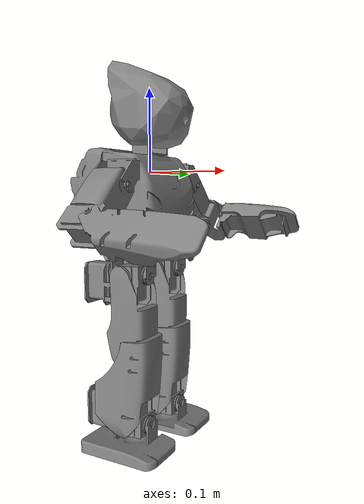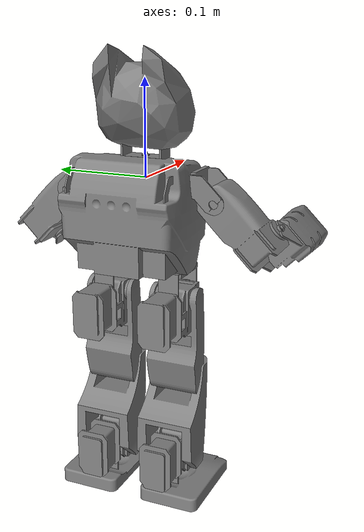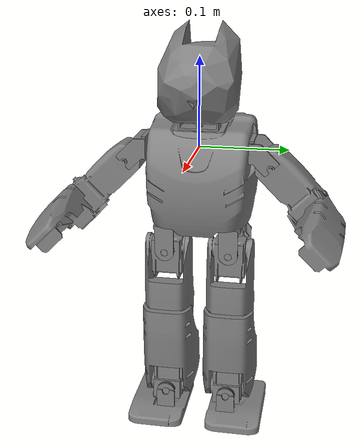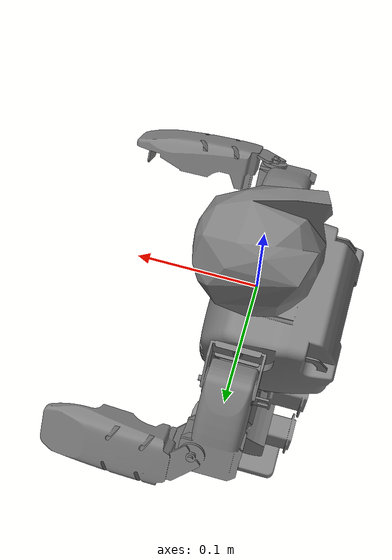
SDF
<?xml version="1.0" encoding="utf-8"?>

<sdf version='1.6'>
  <model name='darwin_op'>
    <static>0</static>
    <link name='base_link'>
      <inertial>
        <pose>-0.003 0 -0.019 0 -0 0</pose>
        <mass>0.975</mass>
        <inertia>
          <ixx>2.34e-3</ixx>
          <ixy>-0</ixy>
          <ixz>0</ixz>
          <iyy>2.34e-3</iyy>
          <iyz>0</iyz>
          <izz>2.34e-3</izz>
        </inertia>
      </inertial>
      <collision name='base_link_fixed_joint_lump__body_link_collision'>
        <pose>0 0 0 0 0 -1.5708</pose>
        <geometry>
          <mesh>
            <scale>0.001 0.001 0.001</scale>
            <uri>file://darwin_op/meshes/collision/geo_op_collide_body.stl</uri>
          </mesh>
        </geometry>
        <surface>
          <contact>
            <ode/>
          </contact>
          <friction>
            <ode>
              <mu>0.6</mu>
              <mu2>0.7</mu2>
              <slip1>0.045</slip1>
              <slip2>0.0001</slip2>
            </ode>
          </friction>
        </surface>
      </collision>
      <visual name='base_link_fixed_joint_lump__body_link_visual'>
        <pose>0 0 0 0 0 -1.5708</pose>
        <geometry>
          <mesh>
            <scale>0.001 0.001 0.001</scale>
            <uri>file://darwin_op/meshes/visual/geo_op_body.dae</uri>
          </mesh>
        </geometry>
        <material>
          <ambient>0.1 0.1 0.1</ambient>
          <diffuse>0.5 0.5 0.5</diffuse>
        </material>
        <material>
          <ambient>0.1 0.1 0.1</ambient>
          <diffuse>0.5 0.5 0.5</diffuse>
        </material>
        <cast_shadows>1</cast_shadows>
      </visual>
      <sensor name="body_imu" type="imu">
        <always_on>1</always_on>
        <update_rate>100</update_rate>
        <visualize>false</visualize>
        <imu>
          <x>
            <noise>
              <type>gaussian</type>
              <mean>0.0</mean>
              <stddev>0.65</stddev>
            </noise>
          </x>
          <y>
            <noise>
              <type>gaussian</type>
              <mean>0.0</mean>
              <stddev>0.65</stddev>
            </noise>
          </y>
          <z>
            <noise>
              <type>gaussian</type>
              <mean>0.0</mean>
              <stddev>0.8</stddev>
            </noise>
          </z>
        </imu>
      </sensor>
      <gravity>1</gravity>
      <velocity_decay/>
      <self_collide>1</self_collide>
    </link>
    <joint name='head_pan' type='revolute'>
      <pose relative_to='base_link'>0 0 0.0205 0 -0 0</pose>
      <parent>base_link</parent>
      <child>head_pan_link</child>
      <axis>
        <xyz>0 0 1</xyz>
        <limit>
          <lower>-2.61799</lower>
          <upper>2.61799</upper>
          <effort>2.5</effort>
          <velocity>4.4505895926</velocity>
        </limit>
        <dynamics>
          <damping>2.5e-1</damping>
          <friction>3.6e-1</friction>
          <spring_reference>0.0000456</spring_reference>
          <spring_stiffness>0.0000123</spring_stiffness>
        </dynamics>
      </axis>
    </joint>
    <link name='head_pan_link'>
      <pose relative_to='head_pan'>0 0 0 0 -0 0</pose>
      <inertial>
        <pose>0 0 0 0 -0 0</pose>
        <mass>0.0243</mass>
        <inertia>
          <ixx>1e-5</ixx>
          <ixy>0</ixy>
          <ixz>0</ixz>
          <iyy>1e-5</iyy>
          <iyz>0</iyz>
          <izz>1e-5</izz>
        </inertia>
      </inertial>
      <collision name='head_pan_link_collision'>
        <pose>0 0 0.03 0 0 -1.5708</pose>
        <geometry>
          <mesh>
            <scale>0.001 0.001 0.001</scale>
            <uri>file://darwin_op/meshes/collision/geo_op_collide_neck.stl</uri>
          </mesh>
        </geometry>
        <surface>
          <contact>
            <ode/>
          </contact>
          <friction>
            <ode>
              <mu>0.6</mu>
              <mu2>0.7</mu2>
              <slip1>0.045</slip1>
              <slip2>0.0001</slip2>
            </ode>
          </friction>
        </surface>
      </collision>
      <visual name='head_pan_link_visual'>
        <pose>0 0 0.03 0 0 -1.5708</pose>
        <geometry>
          <mesh>
            <scale>0.001 0.001 0.001</scale>
            <uri>file://darwin_op/meshes/visual/geo_op_neck.dae</uri>
          </mesh>
        </geometry>
        <material>
          <ambient>0.1 0.1 0.1</ambient>
          <diffuse>0.5 0.5 0.5</diffuse>
        </material>
        <material>
          <ambient>0.1 0.1 0.1</ambient>
          <diffuse>0.5 0.5 0.5</diffuse>
        </material>
        <cast_shadows>1</cast_shadows>
      </visual>
      <gravity>1</gravity>
      <velocity_decay/>
      <self_collide>0</self_collide>
    </link>
    <joint name='head_tilt' type='revolute'>
      <pose relative_to='head_pan_link'>0 0 0.03 0 0.575959 0</pose>
      <parent>head_pan_link</parent>
      <child>head_tilt_link</child>
      <axis>
        <xyz>0 1 0</xyz>
        <limit>
          <lower>-2.61799</lower>
          <upper>2.61799</upper>
          <effort>2.5</effort>
          <velocity>4.4505895926</velocity>
        </limit>
        <dynamics>
          <damping>2.5e-1</damping>
          <friction>3.6e-1</friction>
          <spring_reference>0.0000456</spring_reference>
          <spring_stiffness>0.0000123</spring_stiffness>
        </dynamics>
      </axis>
    </joint>
    <link name='head_tilt_link'>
      <pose relative_to='head_tilt'>0 0 0 0 -0 0</pose>
      <inertial>
        <pose>0 0 0 0 -0 0</pose>
        <mass>0.158</mass>
        <inertia>
          <ixx>1.58e-4</ixx>
          <ixy>0</ixy>
          <ixz>0</ixz>
          <iyy>1.58e-4</iyy>
          <iyz>0</iyz>
          <izz>1.58e-4</izz>
        </inertia>
      </inertial>
      <collision name='head_tilt_link_collision'>
        <pose>0 0 0 3.14159 -0 -1.5708</pose>
        <geometry>
          <mesh>
            <scale>0.001 0.001 0.001</scale>
            <uri>file://darwin_op/meshes/collision/geo_op_collide_head.stl</uri>
          </mesh>
        </geometry>
        <surface>
          <contact>
            <ode/>
          </contact>
          <friction>
            <ode>
              <mu>0.6</mu>
              <mu2>0.7</mu2>
              <slip1>0.045</slip1>
              <slip2>0.0001</slip2>
            </ode>
          </friction>
        </surface>
      </collision>
      <visual name='head_tilt_link_visual'>
        <pose>0 0 0 3.14159 -0 -1.5708</pose>
        <geometry>
          <mesh>
            <scale>0.001 0.001 0.001</scale>
            <uri>file://darwin_op/meshes/visual/geo_op_head.dae</uri>
          </mesh>
        </geometry>
        <material>
          <ambient>0.1 0.1 0.1</ambient>
          <diffuse>0.5 0.5 0.5</diffuse>
        </material>
        <material>
          <ambient>0.1 0.1 0.1</ambient>
          <diffuse>0.5 0.5 0.5</diffuse>
        </material>
        <cast_shadows>1</cast_shadows>
      </visual>
      <velocity_decay/>
      <self_collide>1</self_collide>
      <gravity>1</gravity>
      <sensor name='camera' type='camera'>
        <camera>
          <horizontal_fov>1.0123</horizontal_fov>
          <image>
            <width>320</width>
            <height>200</height>
          </image>
          <clip>
            <near>0.001</near>
            <far>100</far>
          </clip>
          <noise>
            <type>gaussian</type>
            <mean>0.0</mean>
            <stddev>0.015</stddev>
          </noise>
        </camera>
        <always_on>1</always_on>
        <update_rate>30</update_rate>
        <visualize>1</visualize>
        <pose>0.0332 0 0.0344 0 -0 0</pose>
      </sensor>
    </link>
    <joint name='l_hip_yaw' type='revolute'>
      <pose relative_to='base_link'>-0.005 0.037 -0.0907 0 -0 0</pose>
      <parent>base_link</parent>
      <child>l_hip_yaw_link</child>
      <axis>
        <xyz>0 0 1</xyz>
        <limit>
          <lower>-2.61799</lower>
          <upper>2.61799</upper>
          <effort>2.5</effort>
          <velocity>4.4505895926</velocity>
        </limit>
        <dynamics>
          <damping>2.5e-1</damping>
          <friction>3.6e-1</friction>
          <spring_reference>0.0000456</spring_reference>
          <spring_stiffness>0.0000123</spring_stiffness>
        </dynamics>
      </axis>
    </joint>
    <link name='l_hip_yaw_link'>
      <pose relative_to='l_hip_yaw'>0 0 0 0 -0 0</pose>
      <inertial>
        <pose>0 0 0 0 -0 0</pose>
        <mass>0.167</mass>
        <inertia>
          <ixx>1e-5</ixx>
          <ixy>0</ixy>
          <ixz>0</ixz>
          <iyy>1e-5</iyy>
          <iyz>0</iyz>
          <izz>1e-5</izz>
        </inertia>
      </inertial>
      <collision name='l_hip_yaw_link_collision'>
        <pose>0 0 0 0 0 -1.5708</pose>
        <geometry>
          <mesh>
            <scale>0.001 0.001 0.001</scale>
            <uri>file://darwin_op/meshes/collision/geo_op_collide_left_hip-yaw.stl</uri>
          </mesh>
        </geometry>
        <surface>
          <contact>
            <ode/>
          </contact>
          <friction>
            <ode>
              <mu>0.6</mu>
              <mu2>0.7</mu2>
              <slip1>0.045</slip1>
              <slip2>0.0001</slip2>
            </ode>
          </friction>
        </surface>
      </collision>
      <visual name='l_hip_yaw_link_visual'>
        <pose>0 0 0 0 0 -1.5708</pose>
        <geometry>
          <mesh>
            <scale>0.001 0.001 0.001</scale>
            <uri>file://darwin_op/meshes/visual/geo_op_left_hip-yaw.dae</uri>
          </mesh>
        </geometry>
        <material>
          <ambient>0.1 0.1 0.1</ambient>
          <diffuse>0.5 0.5 0.5</diffuse>
        </material>
        <material>
          <ambient>0.1 0.1 0.1</ambient>
          <diffuse>0.5 0.5 0.5</diffuse>
        </material>
        <cast_shadows>1</cast_shadows>
      </visual>
      <gravity>1</gravity>
      <velocity_decay/>
      <self_collide>0</self_collide>
    </link>
    <joint name='l_hip_roll' type='revolute'>
      <pose relative_to='l_hip_yaw_link'>0 0 -0.0315 0 -0 0</pose>
      <parent>l_hip_yaw_link</parent>
      <child>l_hip_roll_link</child>
      <axis>
        <xyz>1 0 0</xyz>
        <limit>
          <lower>-2.61799</lower>
          <upper>2.61799</upper>
          <effort>2.5</effort>
          <velocity>4.4505895926</velocity>
        </limit>
        <dynamics>
          <damping>2.5e-1</damping>
          <friction>3.6e-1</friction>
          <spring_reference>0.0000456</spring_reference>
          <spring_stiffness>0.0000123</spring_stiffness>
        </dynamics>
      </axis>
    </joint>
    <link name='l_hip_roll_link'>
      <pose relative_to='l_hip_roll'>0 0 0 0 -0 0</pose>
      <inertial>
        <pose>-0.02 0 0 0 -0 0</pose>
        <mass>0.119</mass>
        <inertia>
          <ixx>0.486e-4</ixx>
          <ixy>0</ixy>
          <ixz>0</ixz>
          <iyy>0.486e-4</iyy>
          <iyz>0</iyz>
          <izz>0.486e-4</izz>
        </inertia>
      </inertial>
      <collision name='l_hip_roll_link_collision'>
        <pose>0 0 0 0 0 -1.5708</pose>
        <geometry>
          <mesh>
            <scale>0.001 0.001 0.001</scale>
            <uri>file://darwin_op/meshes/collision/geo_op_collide_left_hip-roll.stl</uri>
          </mesh>
        </geometry>
        <surface>
          <contact>
            <ode/>
          </contact>
          <friction>
            <ode>
              <mu>0.6</mu>
              <mu2>0.7</mu2>
              <slip1>0.045</slip1>
              <slip2>0.0001</slip2>
            </ode>
          </friction>
        </surface>
      </collision>
      <visual name='l_hip_roll_link_visual'>
        <pose>0 0 0 0 0 -1.5708</pose>
        <geometry>
          <mesh>
            <scale>0.001 0.001 0.001</scale>
            <uri>file://darwin_op/meshes/visual/geo_op_left_hip-roll.dae</uri>
          </mesh>
        </geometry>
        <material>
          <ambient>0.1 0.1 0.1</ambient>
          <diffuse>0.5 0.5 0.5</diffuse>
        </material>
        <material>
          <ambient>0.1 0.1 0.1</ambient>
          <diffuse>0.5 0.5 0.5</diffuse>
        </material>
        <cast_shadows>1</cast_shadows>
      </visual>
      <gravity>1</gravity>
      <velocity_decay/>
      <self_collide>1</self_collide>
    </link>
    <joint name='l_hip_pitch' type='revolute'>
      <pose relative_to='l_hip_roll_link'>0 0 0 0 -0 0</pose>
      <parent>l_hip_roll_link</parent>
      <child>l_hip_pitch_link</child>
      <axis>
        <xyz>0 1 0</xyz>
        <limit>
          <lower>-2.61799</lower>
          <upper>2.61799</upper>
          <effort>2.5</effort>
          <velocity>4.4505895926</velocity>
        </limit>
        <dynamics>
          <damping>2.5e-1</damping>
          <friction>3.6e-1</friction>
          <spring_reference>0.0000456</spring_reference>
          <spring_stiffness>0.0000123</spring_stiffness>
        </dynamics>
      </axis>
    </joint>
    <link name='l_hip_pitch_link'>
      <pose relative_to='l_hip_pitch'>0 0 0 0 -0 0</pose>
      <inertial>
        <pose>0 0 0 0 -0 0</pose>
        <mass>0.119</mass>
        <inertia>
          <ixx>5.712e-4</ixx>
          <ixy>0</ixy>
          <ixz>0</ixz>
          <iyy>5.712e-4</iyy>
          <iyz>0</iyz>
          <izz>5.712e-4</izz>
        </inertia>
      </inertial>
      <collision name='l_hip_pitch_link_collision'>
        <pose>0 0 0 0 0 -1.5708</pose>
        <geometry>
          <mesh>
            <scale>0.001 0.001 0.001</scale>
            <uri>file://darwin_op/meshes/collision/geo_op_collide_left_thigh.stl</uri>
          </mesh>
        </geometry>
        <surface>
          <contact>
            <ode/>
          </contact>
          <friction>
            <ode>
              <mu>0.6</mu>
              <mu2>0.7</mu2>
              <slip1>0.045</slip1>
              <slip2>0.0001</slip2>
            </ode>
          </friction>
        </surface>
      </collision>
      <visual name='l_hip_pitch_link_visual'>
        <pose>0 0 0 0 0 -1.5708</pose>
        <geometry>
          <mesh>
            <scale>0.001 0.001 0.001</scale>
            <uri>file://darwin_op/meshes/visual/geo_op_left_thigh.dae</uri>
          </mesh>
        </geometry>
        <material>
          <ambient>0.1 0.1 0.1</ambient>
          <diffuse>0.5 0.5 0.5</diffuse>
        </material>
        <cast_shadows>1</cast_shadows>
      </visual>
      <gravity>1</gravity>
      <velocity_decay/>
      <self_collide>1</self_collide>
    </link>
    <joint name='l_knee' type='revolute'>
      <pose relative_to='l_hip_pitch_link'>0 0 -0.093 0 -0 0</pose>
      <parent>l_hip_pitch_link</parent>
      <child>l_knee_link</child>
      <axis>
        <xyz>0 1 0</xyz>
        <limit>
          <lower>-0.03490658504</lower>
          <upper>2.61799</upper>
          <effort>2.5</effort>
          <velocity>4.4505895926</velocity>
        </limit>
        <dynamics>
          <damping>2.5e-1</damping>
          <friction>3.6e-1</friction>
          <spring_reference>0.0000456</spring_reference>
          <spring_stiffness>0.0000123</spring_stiffness>
        </dynamics>
      </axis>
    </joint>
    <link name='l_knee_link'>
      <pose relative_to='l_knee'>0 0 0 0 -0 0</pose>
      <inertial>
        <pose>0 0 0 0 -0 0</pose>
        <mass>0.0703</mass>
        <inertia>
          <ixx>3.3744e-4</ixx>
          <ixy>0</ixy>
          <ixz>0</ixz>
          <iyy>3.3744e-4</iyy>
          <iyz>0</iyz>
          <izz>3.3744e-4</izz>
        </inertia>
      </inertial>
      <collision name='l_knee_link_collision'>
        <pose>0 0 0 0 0 -1.5708</pose>
        <geometry>
          <mesh>
            <scale>0.001 0.001 0.001</scale>
            <uri>file://darwin_op/meshes/collision/geo_op_collide_left_shin.stl</uri>
          </mesh>
        </geometry>
        <surface>
          <contact>
            <ode/>
          </contact>
          <friction>
            <ode>
              <mu>0.6</mu>
              <mu2>0.7</mu2>
              <slip1>0.045</slip1>
              <slip2>0.0001</slip2>
            </ode>
          </friction>
        </surface>
      </collision>
      <visual name='l_knee_link_visual'>
        <pose>0 0 0 0 0 -1.5708</pose>
        <geometry>
          <mesh>
            <scale>0.001 0.001 0.001</scale>
            <uri>file://darwin_op/meshes/visual/geo_op_left_shin.dae</uri>
          </mesh>
        </geometry>
        <material>
          <ambient>0.1 0.1 0.1</ambient>
          <diffuse>0.5 0.5 0.5</diffuse>
        </material>
        <cast_shadows>1</cast_shadows>
      </visual>
      <gravity>1</gravity>
      <velocity_decay/>
      <self_collide>1</self_collide>
    </link>
    <joint name='l_ank_pitch' type='revolute'>
      <pose relative_to='l_knee_link'>0 0 -0.093 0 -0 0</pose>
      <parent>l_knee_link</parent>
      <child>l_ank_pitch_link</child>
      <axis>
        <xyz>0 1 0</xyz>
        <limit>
          <lower>-2.61799</lower>
          <upper>2.61799</upper>
          <effort>2.5</effort>
          <velocity>4.4505895926</velocity>
        </limit>
        <dynamics>
          <damping>2.5e-1</damping>
          <friction>3.6e-1</friction>
          <spring_reference>0.0000456</spring_reference>
          <spring_stiffness>0.0000123</spring_stiffness>
        </dynamics>
      </axis>
    </joint>
    <link name='l_ank_pitch_link'>
      <pose relative_to='l_ank_pitch'>0 0 0 0 -0 0</pose>
      <inertial>
        <pose>-0.02 0 0 0 -0 0</pose>
        <mass>0.167</mass>
        <inertia>
          <ixx>0.682e-4</ixx>
          <ixy>0</ixy>
          <ixz>0</ixz>
          <iyy>0.682e-4</iyy>
          <iyz>0</iyz>
          <izz>0.682e-4</izz>
        </inertia>
      </inertial>
      <collision name='l_ank_pitch_link_collision'>
        <pose>0 0 0 0 0 -1.5708</pose>
        <geometry>
          <mesh>
            <scale>0.001 0.001 0.001</scale>
            <uri>file://darwin_op/meshes/collision/geo_op_collide_left_ankle.stl</uri>
          </mesh>
        </geometry>
        <surface>
          <contact>
            <ode/>
          </contact>
          <friction>
            <ode>
              <mu>0.6</mu>
              <mu2>0.7</mu2>
              <slip1>0.045</slip1>
              <slip2>0.0001</slip2>
            </ode>
          </friction>
        </surface>
      </collision>
      <visual name='l_ank_pitch_link_visual'>
        <pose>0 0 0 0 0 -1.5708</pose>
        <geometry>
          <mesh>
            <scale>0.001 0.001 0.001</scale>
            <uri>file://darwin_op/meshes/visual/geo_op_left_ankle.dae</uri>
          </mesh>
        </geometry>
        <material>
          <ambient>0.1 0.1 0.1</ambient>
          <diffuse>0.5 0.5 0.5</diffuse>
        </material>
        <cast_shadows>1</cast_shadows>
      </visual>
      <gravity>1</gravity>
      <velocity_decay/>
      <self_collide>1</self_collide>
    </link>
    <joint name='l_ank_roll' type='revolute'>
      <pose relative_to='l_ank_pitch_link'>0 0 0 0 -0 0</pose>
      <parent>l_ank_pitch_link</parent>
      <child>l_ank_roll_link</child>
      <axis>
        <xyz>1 0 0</xyz>
        <limit>
          <lower>-2.61799</lower>
          <upper>2.61799</upper>
          <effort>2.5</effort>
          <velocity>4.4505895926</velocity>
        </limit>
        <dynamics>
          <damping>2.5e-1</damping>
          <friction>3.6e-1</friction>
          <spring_reference>0.0000456</spring_reference>
          <spring_stiffness>0.0000123</spring_stiffness>
        </dynamics>
      </axis>
    </joint>
    <link name='l_ank_roll_link'>
      <pose relative_to='l_ank_roll'>0 0 0 0 -0 0</pose>
      <inertial>
        <pose>0 0 0 0 -0 0</pose>
        <mass>0.0794</mass>
        <inertia>
          <ixx>0.986e-4</ixx>
          <ixy>0</ixy>
          <ixz>0</ixz>
          <iyy>0.986e-4</iyy>
          <iyz>0</iyz>
          <izz>0.986e-4</izz>
        </inertia>
      </inertial>
      <collision name='l_ank_roll_link_collision'>
        <pose>0 0 0 0 0 -1.5708</pose>
        <geometry>
          <mesh>
            <scale>0.001 0.001 0.001</scale>
            <uri>file://darwin_op/meshes/collision/geo_op_collide_left_foot.stl</uri>
          </mesh>
        </geometry>
        <surface>
          <contact>
            <ode>
              <kp>0.12</kp>
              <kd>0.1</kd>
              <min_depth>0.01</min_depth>
            </ode>
          </contact>
          <friction>
            <ode>
              <mu>0.6</mu>
              <mu2>0.7</mu2>
              <slip1>0.045</slip1>
              <slip2>0.0001</slip2>
            </ode>
          </friction>
        </surface>
        <max_contacts>1</max_contacts>
      </collision>
      <visual name='l_ank_roll_link_visual'>
        <pose>0 0 0 0 0 -1.5708</pose>
        <geometry>
          <mesh>
            <scale>0.001 0.001 0.001</scale>
            <uri>file://darwin_op/meshes/visual/geo_op_left_foot.dae</uri>
          </mesh>
        </geometry>
        <material>
          <ambient>0.1 0.1 0.1</ambient>
          <diffuse>0.5 0.5 0.5</diffuse>
        </material>
        <cast_shadows>1</cast_shadows>
      </visual>
      <gravity>1</gravity>
      <velocity_decay/>
      <self_collide>1</self_collide>
    </link>
    <joint name='l_sho_pitch' type='revolute'>
      <pose relative_to='base_link'>0 0.0575 0 0 -0 0</pose>
      <parent>base_link</parent>
      <child>l_sho_pitch_link</child>
      <axis>
        <xyz>0 1 0</xyz>
        <limit>
          <lower>-2.61799</lower>
          <upper>2.61799</upper>
          <effort>2.5</effort>
          <velocity>4.4505895926</velocity>
        </limit>
        <dynamics>
          <damping>2.5e-1</damping>
          <friction>3.6e-1</friction>
          <spring_reference>0.0000456</spring_reference>
          <spring_stiffness>0.0000123</spring_stiffness>
        </dynamics>
      </axis>
    </joint>
    <link name='l_sho_pitch_link'>
      <pose relative_to='l_sho_pitch'>0 0 0 0 -0 0</pose>
      <inertial>
        <pose>0 0 0 0 -0 0</pose>
        <mass>0.0259</mass>
        <inertia>
          <ixx>1e-5</ixx>
          <ixy>0</ixy>
          <ixz>0</ixz>
          <iyy>1e-5</iyy>
          <iyz>0</iyz>
          <izz>1e-5</izz>
        </inertia>
      </inertial>
      <collision name='l_sho_pitch_link_collision'>
        <pose>0 0 0 0 0 -1.5708</pose>
        <geometry>
          <mesh>
            <scale>0.001 0.001 0.001</scale>
            <uri>file://darwin_op/meshes/collision/geo_op_collide_left_shoulder.stl</uri>
          </mesh>
        </geometry>
        <surface>
          <contact>
            <ode/>
          </contact>
          <friction>
            <ode>
              <mu>0.6</mu>
              <mu2>0.7</mu2>
              <slip1>0.045</slip1>
              <slip2>0.0001</slip2>
            </ode>
          </friction>
        </surface>
      </collision>
      <visual name='l_sho_pitch_link_visual'>
        <pose>0 0 0 0 0 -1.5708</pose>
        <geometry>
          <mesh>
            <scale>0.001 0.001 0.001</scale>
            <uri>file://darwin_op/meshes/visual/geo_op_left_shoulder.dae</uri>
          </mesh>
        </geometry>
        <material>
          <ambient>0.1 0.1 0.1</ambient>
          <diffuse>0.5 0.5 0.5</diffuse>
        </material>
        <cast_shadows>1</cast_shadows>
      </visual>
      <gravity>1</gravity>
      <velocity_decay/>
      <self_collide>0</self_collide>
    </link>
    <joint name='l_sho_roll' type='revolute'>
      <pose relative_to='l_sho_pitch_link'>0 0.0245 -0.016 0.785398 -0 0</pose>
      <parent>l_sho_pitch_link</parent>
      <child>l_sho_roll_link</child>
      <axis>
        <xyz>1 0 0</xyz>
        <limit>
          <lower>-2.61799</lower>
          <upper>2.61799</upper>
          <effort>2.5</effort>
          <velocity>4.4505895926</velocity>
        </limit>
        <dynamics>
          <damping>2.5e-1</damping>
          <friction>3.6e-1</friction>
          <spring_reference>0.0000456</spring_reference>
          <spring_stiffness>0.0000123</spring_stiffness>
        </dynamics>
      </axis>
    </joint>
    <link name='l_sho_roll_link'>
      <pose relative_to='l_sho_roll'>0 0 0 0 -0 0</pose>
      <inertial>
        <pose>0 0 0 0 -0 0</pose>
        <mass>0.168</mass>
        <inertia>
          <ixx>4.536e-4</ixx>
          <ixy>0</ixy>
          <ixz>0</ixz>
          <iyy>4.536e-4</iyy>
          <iyz>0</iyz>
          <izz>4.536e-4</izz>
        </inertia>
      </inertial>
      <collision name='l_sho_roll_link_collision'>
        <pose>0 0 0 0 0 -1.5708</pose>
        <geometry>
          <mesh>
            <scale>0.001 0.001 0.001</scale>
            <uri>file://darwin_op/meshes/collision/geo_op_collide_left_upper-arm.stl</uri>
          </mesh>
        </geometry>
        <surface>
          <contact>
            <ode/>
          </contact>
          <friction>
            <ode>
              <mu>0.6</mu>
              <mu2>0.7</mu2>
              <slip1>0.045</slip1>
              <slip2>0.0001</slip2>
            </ode>
          </friction>
        </surface>
      </collision>
      <visual name='l_sho_roll_link_visual'>
        <pose>0 0 0 0 0 -1.5708</pose>
        <geometry>
          <mesh>
            <scale>0.001 0.001 0.001</scale>
            <uri>file://darwin_op/meshes/visual/geo_op_left_upper-arm.dae</uri>
          </mesh>
        </geometry>
        <material>
          <ambient>0.1 0.1 0.1</ambient>
          <diffuse>0.5 0.5 0.5</diffuse>
        </material>
        <cast_shadows>1</cast_shadows>
      </visual>
      <gravity>1</gravity>
      <velocity_decay/>
      <self_collide>1</self_collide>
    </link>
    <joint name='l_el' type='revolute'>
      <pose relative_to='l_sho_roll_link'>0.016 0 -0.06 0 -1.5708 0</pose>
      <parent>l_sho_roll_link</parent>
      <child>l_el_link</child>
      <axis>
        <xyz>0 1 0</xyz>
        <limit>
          <lower>-2.61799</lower>
          <upper>2.61799</upper>
          <effort>2.5</effort>
          <velocity>4.4505895926</velocity>
        </limit>
        <dynamics>
          <damping>2.5e-1</damping>
          <friction>3.6e-1</friction>
          <spring_reference>0.0000456</spring_reference>
          <spring_stiffness>0.0000123</spring_stiffness>
        </dynamics>
      </axis>
    </joint>
    <link name='l_el_link'>
      <pose relative_to='l_el'>0 0 0 0 -0 0</pose>
      <inertial>
        <pose>0 0 0 0 -0 0</pose>
        <mass>0.0592</mass>
        <inertia>
          <ixx>2.38e-4</ixx>
          <ixy>0</ixy>
          <ixz>0</ixz>
          <iyy>2.38e-4</iyy>
          <iyz>0</iyz>
          <izz>2.38e-4</izz>
        </inertia>
      </inertial>
      <collision name='l_el_link_collision'>
        <pose>0 0 0 0 0 -1.5708</pose>
        <geometry>
          <mesh>
            <scale>0.001 0.001 0.001</scale>
            <uri>file://darwin_op/meshes/collision/geo_op_collide_left_lower-arm.stl</uri>
          </mesh>
        </geometry>
        <surface>
          <contact>
            <ode/>
          </contact>
          <friction>
            <ode>
              <mu>0.6</mu>
              <mu2>0.7</mu2>
              <slip1>0.045</slip1>
              <slip2>0.0001</slip2>
            </ode>
          </friction>
        </surface>
      </collision>
      <visual name='l_el_link_visual'>
        <pose>0 0 0 0 0 -1.5708</pose>
        <geometry>
          <mesh>
            <scale>0.001 0.001 0.001</scale>
            <uri>file://darwin_op/meshes/visual/geo_op_left_lower-arm.dae</uri>
          </mesh>
        </geometry>
        <material>
          <ambient>0.1 0.1 0.1</ambient>
          <diffuse>0.5 0.5 0.5</diffuse>
        </material>
        <cast_shadows>1</cast_shadows>
      </visual>
      <gravity>1</gravity>
      <velocity_decay/>
      <self_collide>1</self_collide>
    </link>
    <joint name='r_hip_yaw' type='revolute'>
      <pose relative_to='base_link'>-0.005 -0.037 -0.0907 0 -0 0</pose>
      <parent>base_link</parent>
      <child>r_hip_yaw_link</child>
      <axis>
        <xyz>0 0 1</xyz>
        <limit>
          <lower>-2.61799</lower>
          <upper>2.61799</upper>
          <effort>2.5</effort>
          <velocity>4.4505895926</velocity>
        </limit>
        <dynamics>
          <damping>2.5e-1</damping>
          <friction>3.6e-1</friction>
          <spring_reference>0.0000456</spring_reference>
          <spring_stiffness>0.0000123</spring_stiffness>
        </dynamics>
      </axis>
    </joint>
    <link name='r_hip_yaw_link'>
      <pose relative_to='r_hip_yaw'>0 0 0 0 -0 0</pose>
      <inertial>
        <pose>0 0 0 0 -0 0</pose>
        <mass>0.167</mass>
        <inertia>
          <ixx>1e-5</ixx>
          <ixy>0</ixy>
          <ixz>0</ixz>
          <iyy>1e-5</iyy>
          <iyz>0</iyz>
          <izz>1e-5</izz>
        </inertia>
      </inertial>
      <collision name='r_hip_yaw_link_collision'>
        <pose>0 0 0 0 0 -1.5708</pose>
        <geometry>
          <mesh>
            <scale>0.001 0.001 0.001</scale>
            <uri>file://darwin_op/meshes/collision/geo_op_collide_right_hip-yaw.stl</uri>
          </mesh>
        </geometry>
        <surface>
          <contact>
            <ode/>
          </contact>
          <friction>
            <ode>
              <mu>0.6</mu>
              <mu2>0.7</mu2>
              <slip1>0.045</slip1>
              <slip2>0.0001</slip2>
            </ode>
          </friction>
        </surface>
      </collision>
      <visual name='r_hip_yaw_link_visual'>
        <pose>0 0 0 0 0 -1.5708</pose>
        <geometry>
          <mesh>
            <scale>0.001 0.001 0.001</scale>
            <uri>file://darwin_op/meshes/visual/geo_op_right_hip-yaw.dae</uri>
          </mesh>
        </geometry>
        <material>
          <ambient>0.1 0.1 0.1</ambient>
          <diffuse>0.5 0.5 0.5</diffuse>
        </material>
        <cast_shadows>1</cast_shadows>
      </visual>
      <gravity>1</gravity>
      <velocity_decay/>
      <self_collide>0</self_collide>
    </link>
    <joint name='r_hip_roll' type='revolute'>
      <pose relative_to='r_hip_yaw_link'>0 0 -0.0315 0 -0 0</pose>
      <parent>r_hip_yaw_link</parent>
      <child>r_hip_roll_link</child>
      <axis>
        <xyz>1 0 0</xyz>
        <limit>
          <lower>-2.61799</lower>
          <upper>2.61799</upper>
          <effort>2.5</effort>
          <velocity>4.4505895926</velocity>
        </limit>
        <dynamics>
          <damping>2.5e-1</damping>
          <friction>3.6e-1</friction>
          <spring_reference>0.0000456</spring_reference>
          <spring_stiffness>0.0000123</spring_stiffness>
        </dynamics>
      </axis>
    </joint>
    <link name='r_hip_roll_link'>
      <pose relative_to='r_hip_roll'>0 0 0 0 -0 0</pose>
      <inertial>
        <pose>-0.02 0 0 0 -0 0</pose>
        <mass>0.119</mass>
        <inertia>
          <ixx>0.486e-4</ixx>
          <ixy>0</ixy>
          <ixz>0</ixz>
          <iyy>0.486e-4</iyy>
          <iyz>0</iyz>
          <izz>0.486e-4</izz>
        </inertia>
      </inertial>
      <collision name='r_hip_roll_link_collision'>
        <pose>0 0 0 0 0 -1.5708</pose>
        <geometry>
          <mesh>
            <scale>0.001 0.001 0.001</scale>
            <uri>file://darwin_op/meshes/collision/geo_op_collide_right_hip-roll.stl</uri>
          </mesh>
        </geometry>
        <surface>
          <contact>
            <ode/>
          </contact>
          <friction>
            <ode>
              <mu>0.6</mu>
              <mu2>0.7</mu2>
              <slip1>0.045</slip1>
              <slip2>0.0001</slip2>
            </ode>
          </friction>
        </surface>
      </collision>
      <visual name='r_hip_roll_link_visual'>
        <pose>0 0 0 0 0 -1.5708</pose>
        <geometry>
          <mesh>
            <scale>0.001 0.001 0.001</scale>
            <uri>file://darwin_op/meshes/visual/geo_op_right_hip-roll.dae</uri>
          </mesh>
        </geometry>
        <material>
          <ambient>0.1 0.1 0.1</ambient>
          <diffuse>0.5 0.5 0.5</diffuse>
        </material>
        <cast_shadows>1</cast_shadows>
      </visual>
      <gravity>1</gravity>
      <velocity_decay/>
      <self_collide>1</self_collide>
    </link>
    <joint name='r_hip_pitch' type='revolute'>
      <pose relative_to='r_hip_roll_link'>0 0 0 0 -0 0</pose>
      <parent>r_hip_roll_link</parent>
      <child>r_hip_pitch_link</child>
      <axis>
        <xyz>0 1 0</xyz>
        <limit>
          <lower>-2.61799</lower>
          <upper>2.61799</upper>
          <effort>2.5</effort>
          <velocity>4.4505895926</velocity>
        </limit>
        <dynamics>
          <damping>2.5e-1</damping>
          <friction>3.6e-1</friction>
          <spring_reference>0.0000456</spring_reference>
          <spring_stiffness>0.0000123</spring_stiffness>
        </dynamics>
      </axis>
    </joint>
    <link name='r_hip_pitch_link'>
      <pose relative_to='r_hip_pitch'>0 0 0 0 -0 0</pose>
      <inertial>
        <pose>0 0 0 0 -0 0</pose>
        <mass>0.119</mass>
        <inertia>
          <ixx>5.712e-4</ixx>
          <ixy>0</ixy>
          <ixz>0</ixz>
          <iyy>5.712e-4</iyy>
          <iyz>0</iyz>
          <izz>5.712e-4</izz>
        </inertia>
      </inertial>
      <collision name='r_hip_pitch_link_collision'>
        <pose>0 0 0 0 0 -1.5708</pose>
        <geometry>
          <mesh>
            <scale>0.001 0.001 0.001</scale>
            <uri>file://darwin_op/meshes/collision/geo_op_collide_right_thigh.stl</uri>
          </mesh>
        </geometry>
        <surface>
          <contact>
            <ode/>
          </contact>
          <friction>
            <ode>
              <mu>0.6</mu>
              <mu2>0.7</mu2>
              <slip1>0.045</slip1>
              <slip2>0.0001</slip2>
            </ode>
          </friction>
        </surface>
      </collision>
      <visual name='r_hip_pitch_link_visual'>
        <pose>0 0 0 0 0 -1.5708</pose>
        <geometry>
          <mesh>
            <scale>0.001 0.001 0.001</scale>
            <uri>file://darwin_op/meshes/visual/geo_op_right_thigh.dae</uri>
          </mesh>
        </geometry>
        <material>
          <ambient>0.1 0.1 0.1</ambient>
          <diffuse>0.5 0.5 0.5</diffuse>
        </material>
        <cast_shadows>1</cast_shadows>
      </visual>
      <gravity>1</gravity>
      <velocity_decay/>
      <self_collide>1</self_collide>
    </link>
    <joint name='r_knee' type='revolute'>
      <pose relative_to='r_hip_pitch_link'>0 0 -0.093 0 -0 0</pose>
      <parent>r_hip_pitch_link</parent>
      <child>r_knee_link</child>
      <axis>
        <xyz>0 1 0</xyz>
        <limit>
          <lower>-0.03490658504</lower>
          <upper>2.61799</upper>
          <effort>2.5</effort>
          <velocity>4.4505895926</velocity>
        </limit>
        <dynamics>
          <damping>2.5e-1</damping>
          <friction>3.6e-1</friction>
          <spring_reference>0.0000456</spring_reference>
          <spring_stiffness>0.0000123</spring_stiffness>
        </dynamics>
      </axis>
    </joint>
    <link name='r_knee_link'>
      <pose relative_to='r_knee'>0 0 0 0 -0 0</pose>
      <inertial>
        <pose>0 0 0 0 -0 0</pose>
        <mass>0.0703</mass>
        <inertia>
          <ixx>3.3744e-4</ixx>
          <ixy>0</ixy>
          <ixz>0</ixz>
          <iyy>3.3744e-4</iyy>
          <iyz>0</iyz>
          <izz>3.3744e-4</izz>
        </inertia>
      </inertial>
      <collision name='r_knee_link_collision'>
        <pose>0 0 -0.093 0 0 -1.5708</pose>
        <geometry>
          <mesh>
            <scale>0.001 0.001 0.001</scale>
            <uri>file://darwin_op/meshes/collision/geo_op_collide_right_shin.stl</uri>
          </mesh>
        </geometry>
        <surface>
          <contact>
            <ode/>
          </contact>
          <friction>
            <ode>
              <mu>0.6</mu>
              <mu2>0.7</mu2>
              <slip1>0.045</slip1>
              <slip2>0.0001</slip2>
            </ode>
          </friction>
        </surface>
      </collision>
      <visual name='r_knee_link_visual'>
        <pose>0 0 -0.093 0 0 -1.5708</pose>
        <geometry>
          <mesh>
            <scale>0.001 0.001 0.001</scale>
            <uri>file://darwin_op/meshes/visual/geo_op_right_shin.dae</uri>
          </mesh>
        </geometry>
        <material>
          <ambient>0.1 0.1 0.1</ambient>
          <diffuse>0.5 0.5 0.5</diffuse>
        </material>
        <cast_shadows>1</cast_shadows>
      </visual>
      <gravity>1</gravity>
      <velocity_decay/>
      <self_collide>1</self_collide>
    </link>
    <joint name='r_ank_pitch' type='revolute'>
      <pose relative_to='r_knee_link'>0 0 -0.093 0 -0 0</pose>
      <parent>r_knee_link</parent>
      <child>r_ank_pitch_link</child>
      <axis>
        <xyz>0 1 0</xyz>
        <limit>
          <lower>-2.61799</lower>
          <upper>2.61799</upper>
          <effort>2.5</effort>
          <velocity>4.4505895926</velocity>
        </limit>
        <dynamics>
          <damping>2.5e-1</damping>
          <friction>3.6e-1</friction>
          <spring_reference>0.0000456</spring_reference>
          <spring_stiffness>0.0000123</spring_stiffness>
        </dynamics>
      </axis>
    </joint>
    <link name='r_ank_pitch_link'>
      <pose relative_to='r_ank_pitch'>0 0 0 0 -0 0</pose>
      <inertial>
        <pose>-0.02 0 0 0 -0 0</pose>
        <mass>0.167</mass>
        <inertia>
          <ixx>0.682e-4</ixx>
          <ixy>0</ixy>
          <ixz>0</ixz>
          <iyy>0.682e-4</iyy>
          <iyz>0</iyz>
          <izz>0.682e-4</izz>
        </inertia>
      </inertial>
      <collision name='r_ank_pitch_link_collision'>
        <pose>0 0 0 0 0 -1.5708</pose>
        <geometry>
          <mesh>
            <scale>0.001 0.001 0.001</scale>
            <uri>file://darwin_op/meshes/collision/geo_op_collide_right_ankle.stl</uri>
          </mesh>
        </geometry>
        <surface>
          <contact>
            <ode/>
          </contact>
          <friction>
            <ode>
              <mu>0.6</mu>
              <mu2>0.7</mu2>
              <slip1>0.045</slip1>
              <slip2>0.0001</slip2>
            </ode>
          </friction>
        </surface>
      </collision>
      <visual name='r_ank_pitch_link_visual'>
        <pose>0 0 0 0 0 -1.5708</pose>
        <geometry>
          <mesh>
            <scale>0.001 0.001 0.001</scale>
            <uri>file://darwin_op/meshes/visual/geo_op_right_ankle.dae</uri>
          </mesh>
        </geometry>
        <material>
          <ambient>0.1 0.1 0.1</ambient>
          <diffuse>0.5 0.5 0.5</diffuse>
        </material>
        <cast_shadows>1</cast_shadows>
      </visual>
      <gravity>1</gravity>
      <velocity_decay/>
      <self_collide>1</self_collide>
    </link>
    <joint name='r_ank_roll' type='revolute'>
      <pose relative_to='r_ank_pitch_link'>0 0 0 0 -0 0</pose>
      <parent>r_ank_pitch_link</parent>
      <child>r_ank_roll_link</child>
      <axis>
        <xyz>1 0 0</xyz>
        <limit>
          <lower>-2.61799</lower>
          <upper>2.61799</upper>
          <effort>2.5</effort>
          <velocity>4.4505895926</velocity>
        </limit>
        <dynamics>
          <damping>2.5e-1</damping>
          <friction>3.6e-1</friction>
          <spring_reference>0.0000456</spring_reference>
          <spring_stiffness>0.0000123</spring_stiffness>
        </dynamics>
      </axis>
    </joint>
    <link name='r_ank_roll_link'>
      <pose relative_to='r_ank_roll'>0 0 0 0 -0 0</pose>
      <inertial>
        <pose>0 0 0 0 -0 0</pose>
        <mass>0.0794</mass>
        <inertia>
          <ixx>0.986e-4</ixx>
          <ixy>0</ixy>
          <ixz>0</ixz>
          <iyy>0.986e-4</iyy>
          <iyz>0</iyz>
          <izz>0.986e-4</izz>
        </inertia>
      </inertial>
      <collision name='r_ank_roll_link_collision'>
        <pose>0 0 0 0 0 -1.5708</pose>
        <geometry>
          <mesh>
            <scale>0.001 0.001 0.001</scale>
            <uri>file://darwin_op/meshes/collision/geo_op_collide_right_foot.stl</uri>
          </mesh>
        </geometry>
        <surface>
          <contact>
            <ode>
              <kp>0.12</kp>
              <kd>0.1</kd>
              <min_depth>0.01</min_depth>
            </ode>
          </contact>
          <friction>
            <ode>
              <mu>0.6</mu>
              <mu2>0.7</mu2>
              <slip1>0.045</slip1>
              <slip2>0.0001</slip2>
            </ode>
          </friction>
        </surface>
        <max_contacts>1</max_contacts>
      </collision>
      <visual name='r_ank_roll_link_visual'>
        <pose>0 0 0 0 0 -1.5708</pose>
        <geometry>
          <mesh>
            <scale>0.001 0.001 0.001</scale>
            <uri>file://darwin_op/meshes/visual/geo_op_right_foot.dae</uri>
          </mesh>
        </geometry>
        <material>
          <ambient>0.1 0.1 0.1</ambient>
          <diffuse>0.5 0.5 0.5</diffuse>
        </material>
        <cast_shadows>1</cast_shadows>
      </visual>
      <gravity>1</gravity>
      <velocity_decay/>
      <self_collide>1</self_collide>
    </link>
    <joint name='r_sho_pitch' type='revolute'>
      <pose relative_to='base_link'>0 -0.0575 0 0 -0 0</pose>
      <parent>base_link</parent>
      <child>r_sho_pitch_link</child>
      <axis>
        <xyz>0 1 0</xyz>
        <limit>
          <lower>-2.61799</lower>
          <upper>2.61799</upper>
          <effort>2.5</effort>
          <velocity>4.4505895926</velocity>
        </limit>
        <dynamics>
          <damping>2.5e-1</damping>
          <friction>3.6e-1</friction>
          <spring_reference>0.0000456</spring_reference>
          <spring_stiffness>0.0000123</spring_stiffness>
        </dynamics>
      </axis>
    </joint>
    <link name='r_sho_pitch_link'>
      <pose relative_to='r_sho_pitch'>0 0 0 0 -0 0</pose>
      <inertial>
        <pose>0 0 0 0 -0 0</pose>
        <mass>0.0259</mass>
        <inertia>
          <ixx>1e-5</ixx>
          <ixy>0</ixy>
          <ixz>0</ixz>
          <iyy>1e-5</iyy>
          <iyz>0</iyz>
          <izz>1e-5</izz>
        </inertia>
      </inertial>
      <collision name='r_sho_pitch_link_collision'>
        <pose>0 0 0 0 0 -1.5708</pose>
        <geometry>
          <mesh>
            <scale>0.001 0.001 0.001</scale>
            <uri>file://darwin_op/meshes/collision/geo_op_collide_right_shoulder.stl</uri>
          </mesh>
        </geometry>
        <surface>
          <contact>
            <ode/>
          </contact>
          <friction>
            <ode>
              <mu>0.6</mu>
              <mu2>0.7</mu2>
              <slip1>0.045</slip1>
              <slip2>0.0001</slip2>
            </ode>
          </friction>
        </surface>
      </collision>
      <visual name='r_sho_pitch_link_visual'>
        <pose>0 0 0 0 0 -1.5708</pose>
        <geometry>
          <mesh>
            <scale>0.001 0.001 0.001</scale>
            <uri>file://darwin_op/meshes/visual/geo_op_right_shoulder.dae</uri>
          </mesh>
        </geometry>
        <material>
          <ambient>0.1 0.1 0.1</ambient>
          <diffuse>0.5 0.5 0.5</diffuse>
        </material>
        <cast_shadows>1</cast_shadows>
      </visual>
      <gravity>1</gravity>
      <velocity_decay/>
      <self_collide>0</self_collide>
    </link>
    <joint name='r_sho_roll' type='revolute'>
      <pose relative_to='r_sho_pitch_link'>0 -0.0245 -0.016 -0.785398 0 0</pose>
      <parent>r_sho_pitch_link</parent>
      <child>r_sho_roll_link</child>
      <axis>
        <xyz>1 0 0</xyz>
        <limit>
          <lower>-2.61799</lower>
          <upper>2.61799</upper>
          <effort>2.5</effort>
          <velocity>4.4505895926</velocity>
        </limit>
        <dynamics>
          <damping>2.5e-1</damping>
          <friction>3.6e-1</friction>
          <spring_reference>0.0000456</spring_reference>
          <spring_stiffness>0.0000123</spring_stiffness>
        </dynamics>
      </axis>
    </joint>
    <link name='r_sho_roll_link'>
      <pose relative_to='r_sho_roll'>0 0 0 0 -0 0</pose>
      <inertial>
        <pose>0 0 0 0 -0 0</pose>
        <mass>0.168</mass>
        <inertia>
          <ixx>4.536e-4</ixx>
          <ixy>0</ixy>
          <ixz>0</ixz>
          <iyy>4.536e-4</iyy>
          <iyz>0</iyz>
          <izz>4.536e-4</izz>
        </inertia>
      </inertial>
      <collision name='r_sho_roll_link_collision'>
        <pose>0 0 0 0 0 -1.5708</pose>
        <geometry>
          <mesh>
            <scale>0.001 0.001 0.001</scale>
            <uri>file://darwin_op/meshes/collision/geo_op_collide_right_upper-arm.stl</uri>
          </mesh>
        </geometry>
        <surface>
          <contact>
            <ode/>
          </contact>
          <friction>
            <ode>
              <mu>0.6</mu>
              <mu2>0.7</mu2>
              <slip1>0.045</slip1>
              <slip2>0.0001</slip2>
            </ode>
          </friction>
        </surface>
      </collision>
      <visual name='r_sho_roll_link_visual'>
        <pose>0 0 0 0 0 -1.5708</pose>
        <geometry>
          <mesh>
            <scale>0.001 0.001 0.001</scale>
            <uri>file://darwin_op/meshes/visual/geo_op_right_upper-arm.dae</uri>
          </mesh>
        </geometry>
        <material>
          <ambient>0.1 0.1 0.1</ambient>
          <diffuse>0.5 0.5 0.5</diffuse>
        </material>
        <cast_shadows>1</cast_shadows>
      </visual>
      <gravity>1</gravity>
      <velocity_decay/>
      <self_collide>1</self_collide>
    </link>
    <joint name='r_el' type='revolute'>
      <pose relative_to='r_sho_roll_link'>0.016 0 -0.06 0 -1.5708 0</pose>
      <parent>r_sho_roll_link</parent>
      <child>r_el_link</child>
      <axis>
        <xyz>0 1 0</xyz>
        <limit>
          <lower>-2.61799</lower>
          <upper>2.61799</upper>
          <effort>2.5</effort>
          <velocity>4.4505895926</velocity>
        </limit>
        <dynamics>
          <damping>2.5e-1</damping>
          <friction>3.6e-1</friction>
          <spring_reference>0.0000456</spring_reference>
          <spring_stiffness>0.0000123</spring_stiffness>
        </dynamics>
      </axis>
    </joint>
    <link name='r_el_link'>
      <pose relative_to='r_el'>0 0 0 0 -0 0</pose>
      <inertial>
        <pose>0 0 0 0 -0 0</pose>
        <mass>0.0592</mass>
        <inertia>
          <ixx>2.38e-4</ixx>
          <ixy>0</ixy>
          <ixz>0</ixz>
          <iyy>2.38e-4</iyy>
          <iyz>0</iyz>
          <izz>2.38e-4</izz>
        </inertia>
      </inertial>
      <collision name='r_el_link_collision'>
        <pose>0 0 0 0 0 -1.5708</pose>
        <geometry>
          <mesh>
            <scale>0.001 0.001 0.001</scale>
            <uri>file://darwin_op/meshes/collision/geo_op_collide_right_lower-arm.stl</uri>
          </mesh>
        </geometry>
      </collision>
      <visual name='r_el_link_visual'>
        <pose>0 0 0 0 0 -1.5708</pose>
        <geometry>
          <mesh>
            <scale>0.001 0.001 0.001</scale>
            <uri>file://darwin_op/meshes/visual/geo_op_right_lower-arm.dae</uri>
          </mesh>
        </geometry>
        <material>
          <ambient>0.1 0.1 0.1</ambient>
          <diffuse>0.5 0.5 0.5</diffuse>
        </material>
        <cast_shadows>1</cast_shadows>
      </visual>
      <self_collide>1</self_collide>
    </link>
  </model>
</sdf>
